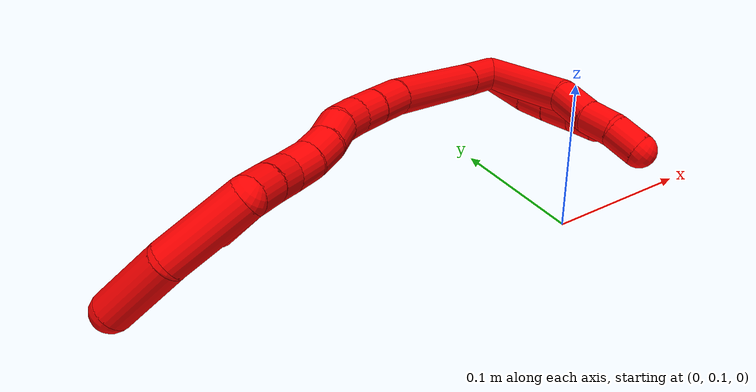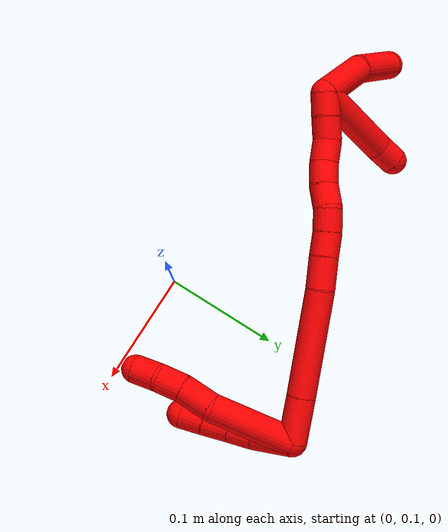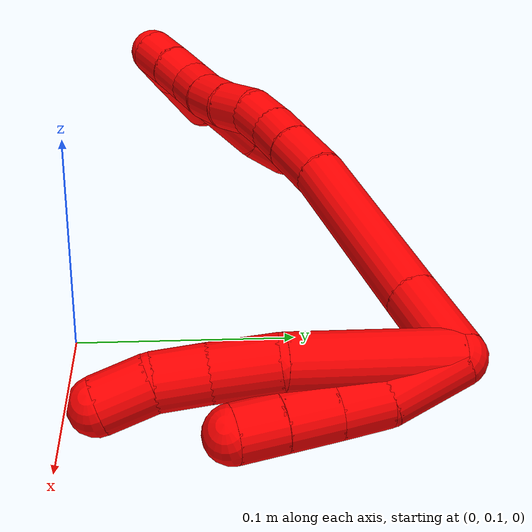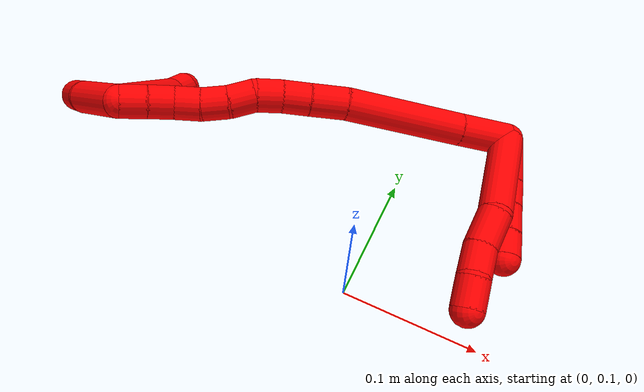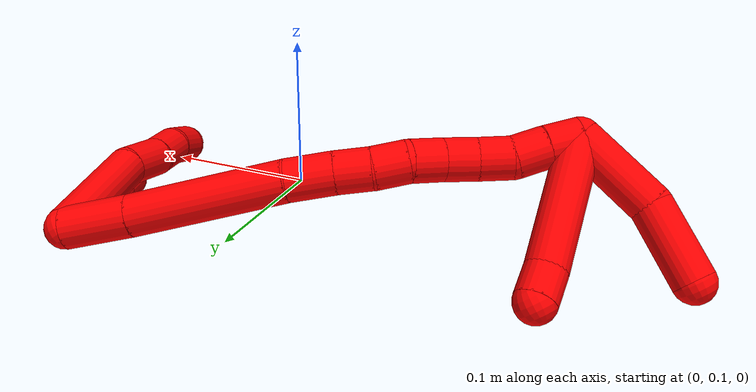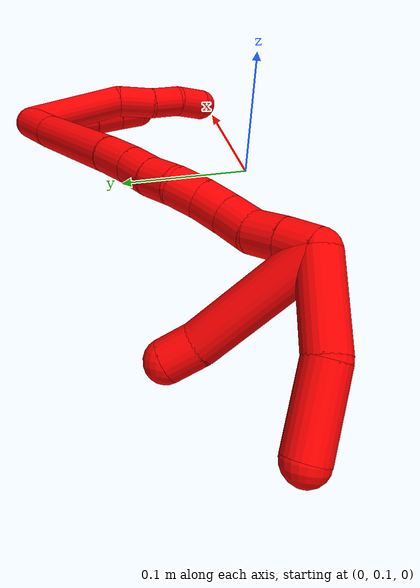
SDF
<sdf version="1.7">
 <world name="default">
  <model name="2">
   <static>0</static>
   <link name="2">
    <collision name="collision-cylinder-e_1_2_8">
     <pose>0.012177 -0.031545 0.015349 1.11795 0.334111 0.210183</pose>
     <geometry><cylinder><radius>0.0125</radius><length>0.074268</length></cylinder></geometry>
     <surface>
      <friction><ode><mu>1.16</mu><mu2>1.16</mu2><slip1>0</slip1><slip2>0</slip2></ode></friction>
      <contact><ode><kp>1e+06</kp><kd>1</kd><max_vel>0</max_vel><min_depth>0.001</min_depth></ode></contact>
     </surface>
    </collision>
    <visual name="visual-cylinder-e_1_2_8">
     <pose>0.012177 -0.031545 0.015349 1.11795 0.334111 0.210183</pose>
     <geometry><cylinder><radius>0.0125</radius><length>0.074268</length></cylinder></geometry>
     <material><ambient>1 0 0 1</ambient></material>
    </visual>
    <collision name="collision-cylinder-e_2_8_9">
     <pose>0.029449 -0.076719 0.032484 1.44045 0.354897 0.312161</pose>
     <geometry><cylinder><radius>0.0125</radius><length>0.02932</length></cylinder></geometry>
     <surface>
      <friction><ode><mu>1.16</mu><mu2>1.16</mu2><slip1>0</slip1><slip2>0</slip2></ode></friction>
      <contact><ode><kp>1e+06</kp><kd>1</kd><max_vel>0</max_vel><min_depth>0.001</min_depth></ode></contact>
     </surface>
    </collision>
    <visual name="visual-cylinder-e_2_8_9">
     <pose>0.029449 -0.076719 0.032484 1.44045 0.354897 0.312161</pose>
     <geometry><cylinder><radius>0.0125</radius><length>0.02932</length></cylinder></geometry>
     <material><ambient>1 0 0 1</ambient></material>
    </visual>
    <collision name="collision-cylinder-e_3_9_10">
     <pose>0.039412 -0.10044 0.037529 1.25844 0.430467 0.315628</pose>
     <geometry><cylinder><radius>0.0125</radius><length>0.023338</length></cylinder></geometry>
     <surface>
      <friction><ode><mu>1.16</mu><mu2>1.16</mu2><slip1>0</slip1><slip2>0</slip2></ode></friction>
      <contact><ode><kp>1e+06</kp><kd>1</kd><max_vel>0</max_vel><min_depth>0.001</min_depth></ode></contact>
     </surface>
    </collision>
    <visual name="visual-cylinder-e_3_9_10">
     <pose>0.039412 -0.10044 0.037529 1.25844 0.430467 0.315628</pose>
     <geometry><cylinder><radius>0.0125</radius><length>0.023338</length></cylinder></geometry>
     <material><ambient>1 0 0 1</ambient></material>
    </visual>
    <collision name="collision-cylinder-e_4_10_6">
     <pose>0.051069 -0.119791 0.041927 1.44838 0.628894 0.560224</pose>
     <geometry><cylinder><radius>0.0125</radius><length>0.023075</length></cylinder></geometry>
     <surface>
      <friction><ode><mu>1.16</mu><mu2>1.16</mu2><slip1>0</slip1><slip2>0</slip2></ode></friction>
      <contact><ode><kp>1e+06</kp><kd>1</kd><max_vel>0</max_vel><min_depth>0.001</min_depth></ode></contact>
     </surface>
    </collision>
    <visual name="visual-cylinder-e_4_10_6">
     <pose>0.051069 -0.119791 0.041927 1.44838 0.628894 0.560224</pose>
     <geometry><cylinder><radius>0.0125</radius><length>0.023075</length></cylinder></geometry>
     <material><ambient>1 0 0 1</ambient></material>
    </visual>
    <collision name="collision-cylinder-e_1_2_11">
     <pose>0.012128 -0.012374 0.003499 1.29521 0.756153 0.583725</pose>
     <geometry><cylinder><radius>0.0125</radius><length>0.035352</length></cylinder></geometry>
     <surface>
      <friction><ode><mu>1.16</mu><mu2>1.16</mu2><slip1>0</slip1><slip2>0</slip2></ode></friction>
      <contact><ode><kp>1e+06</kp><kd>1</kd><max_vel>0</max_vel><min_depth>0.001</min_depth></ode></contact>
     </surface>
    </collision>
    <visual name="visual-cylinder-e_1_2_11">
     <pose>0.012128 -0.012374 0.003499 1.29521 0.756153 0.583725</pose>
     <geometry><cylinder><radius>0.0125</radius><length>0.035352</length></cylinder></geometry>
     <material><ambient>1 0 0 1</ambient></material>
    </visual>
    <collision name="collision-cylinder-e_2_11_12">
     <pose>0.029661 -0.033377 0.010783 1.15745 0.520752 0.344682</pose>
     <geometry><cylinder><radius>0.0125</radius><length>0.021727</length></cylinder></geometry>
     <surface>
      <friction><ode><mu>1.16</mu><mu2>1.16</mu2><slip1>0</slip1><slip2>0</slip2></ode></friction>
      <contact><ode><kp>1e+06</kp><kd>1</kd><max_vel>0</max_vel><min_depth>0.001</min_depth></ode></contact>
     </surface>
    </collision>
    <visual name="visual-cylinder-e_2_11_12">
     <pose>0.029661 -0.033377 0.010783 1.15745 0.520752 0.344682</pose>
     <geometry><cylinder><radius>0.0125</radius><length>0.021727</length></cylinder></geometry>
     <material><ambient>1 0 0 1</ambient></material>
    </visual>
    <collision name="collision-cylinder-e_3_12_13">
     <pose>0.040658 -0.050922 0.018892 1.11924 0.513817 0.326216</pose>
     <geometry><cylinder><radius>0.0125</radius><length>0.022754</length></cylinder></geometry>
     <surface>
      <friction><ode><mu>1.16</mu><mu2>1.16</mu2><slip1>0</slip1><slip2>0</slip2></ode></friction>
      <contact><ode><kp>1e+06</kp><kd>1</kd><max_vel>0</max_vel><min_depth>0.001</min_depth></ode></contact>
     </surface>
    </collision>
    <visual name="visual-cylinder-e_3_12_13">
     <pose>0.040658 -0.050922 0.018892 1.11924 0.513817 0.326216</pose>
     <geometry><cylinder><radius>0.0125</radius><length>0.022754</length></cylinder></geometry>
     <material><ambient>1 0 0 1</ambient></material>
    </visual>
    <collision name="collision-cylinder-e_4_13_5">
     <pose>0.05116 -0.06786 0.026849 1.14558 0.508622 0.332185</pose>
     <geometry><cylinder><radius>0.0125</radius><length>0.020167</length></cylinder></geometry>
     <surface>
      <friction><ode><mu>1.16</mu><mu2>1.16</mu2><slip1>0</slip1><slip2>0</slip2></ode></friction>
      <contact><ode><kp>1e+06</kp><kd>1</kd><max_vel>0</max_vel><min_depth>0.001</min_depth></ode></contact>
     </surface>
    </collision>
    <visual name="visual-cylinder-e_4_13_5">
     <pose>0.05116 -0.06786 0.026849 1.14558 0.508622 0.332185</pose>
     <geometry><cylinder><radius>0.0125</radius><length>0.020167</length></cylinder></geometry>
     <material><ambient>1 0 0 1</ambient></material>
    </visual>
    <collision name="collision-cylinder-e_1_2_14">
     <pose>-0.013711 -0.013073 -0.00551 1.96972 -0.768361 -1.09421</pose>
     <geometry><cylinder><radius>0.0125</radius><length>0.039459</length></cylinder></geometry>
     <surface>
      <friction><ode><mu>1.16</mu><mu2>1.16</mu2><slip1>0</slip1><slip2>0</slip2></ode></friction>
      <contact><ode><kp>1e+06</kp><kd>1</kd><max_vel>0</max_vel><min_depth>0.001</min_depth></ode></contact>
     </surface>
    </collision>
    <visual name="visual-cylinder-e_1_2_14">
     <pose>-0.013711 -0.013073 -0.00551 1.96972 -0.768361 -1.09421</pose>
     <geometry><cylinder><radius>0.0125</radius><length>0.039459</length></cylinder></geometry>
     <material><ambient>1 0 0 1</ambient></material>
    </visual>
    <collision name="collision-cylinder-e_2_14_15">
     <pose>-0.059688 -0.056703 -0.022318 1.9249 -0.780559 -1.06706</pose>
     <geometry><cylinder><radius>0.0125</radius><length>0.091704</length></cylinder></geometry>
     <surface>
      <friction><ode><mu>1.16</mu><mu2>1.16</mu2><slip1>0</slip1><slip2>0</slip2></ode></friction>
      <contact><ode><kp>1e+06</kp><kd>1</kd><max_vel>0</max_vel><min_depth>0.001</min_depth></ode></contact>
     </surface>
    </collision>
    <visual name="visual-cylinder-e_2_14_15">
     <pose>-0.059688 -0.056703 -0.022318 1.9249 -0.780559 -1.06706</pose>
     <geometry><cylinder><radius>0.0125</radius><length>0.091704</length></cylinder></geometry>
     <material><ambient>1 0 0 1</ambient></material>
    </visual>
    <collision name="collision-cylinder-e_3_15_16">
     <pose>-0.100535 -0.097308 -0.037678 1.95512 -0.669782 -0.952926</pose>
     <geometry><cylinder><radius>0.0125</radius><length>0.027651</length></cylinder></geometry>
     <surface>
      <friction><ode><mu>1.16</mu><mu2>1.16</mu2><slip1>0</slip1><slip2>0</slip2></ode></friction>
      <contact><ode><kp>1e+06</kp><kd>1</kd><max_vel>0</max_vel><min_depth>0.001</min_depth></ode></contact>
     </surface>
    </collision>
    <visual name="visual-cylinder-e_3_15_16">
     <pose>-0.100535 -0.097308 -0.037678 1.95512 -0.669782 -0.952926</pose>
     <geometry><cylinder><radius>0.0125</radius><length>0.027651</length></cylinder></geometry>
     <material><ambient>1 0 0 1</ambient></material>
    </visual>
    <collision name="collision-cylinder-e_4_16_17">
     <pose>-0.11561 -0.114692 -0.045301 2.02261 -0.672386 -1.01797</pose>
     <geometry><cylinder><radius>0.0125</radius><length>0.020844</length></cylinder></geometry>
     <surface>
      <friction><ode><mu>1.16</mu><mu2>1.16</mu2><slip1>0</slip1><slip2>0</slip2></ode></friction>
      <contact><ode><kp>1e+06</kp><kd>1</kd><max_vel>0</max_vel><min_depth>0.001</min_depth></ode></contact>
     </surface>
    </collision>
    <visual name="visual-cylinder-e_4_16_17">
     <pose>-0.11561 -0.114692 -0.045301 2.02261 -0.672386 -1.01797</pose>
     <geometry><cylinder><radius>0.0125</radius><length>0.020844</length></cylinder></geometry>
     <material><ambient>1 0 0 1</ambient></material>
    </visual>
    <collision name="collision-cylinder-e_5_17_18">
     <pose>-0.127845 -0.129955 -0.051331 1.87287 -0.605163 -0.802462</pose>
     <geometry><cylinder><radius>0.0125</radius><length>0.020193</length></cylinder></geometry>
     <surface>
      <friction><ode><mu>1.16</mu><mu2>1.16</mu2><slip1>0</slip1><slip2>0</slip2></ode></friction>
      <contact><ode><kp>1e+06</kp><kd>1</kd><max_vel>0</max_vel><min_depth>0.001</min_depth></ode></contact>
     </surface>
    </collision>
    <visual name="visual-cylinder-e_5_17_18">
     <pose>-0.127845 -0.129955 -0.051331 1.87287 -0.605163 -0.802462</pose>
     <geometry><cylinder><radius>0.0125</radius><length>0.020193</length></cylinder></geometry>
     <material><ambient>1 0 0 1</ambient></material>
    </visual>
    <collision name="collision-cylinder-e_6_18_19">
     <pose>-0.136659 -0.146798 -0.057224 1.93733 -0.311022 -0.448554</pose>
     <geometry><cylinder><radius>0.0125</radius><length>0.020062</length></cylinder></geometry>
     <surface>
      <friction><ode><mu>1.16</mu><mu2>1.16</mu2><slip1>0</slip1><slip2>0</slip2></ode></friction>
      <contact><ode><kp>1e+06</kp><kd>1</kd><max_vel>0</max_vel><min_depth>0.001</min_depth></ode></contact>
     </surface>
    </collision>
    <visual name="visual-cylinder-e_6_18_19">
     <pose>-0.136659 -0.146798 -0.057224 1.93733 -0.311022 -0.448554</pose>
     <geometry><cylinder><radius>0.0125</radius><length>0.020062</length></cylinder></geometry>
     <material><ambient>1 0 0 1</ambient></material>
    </visual>
    <collision name="collision-cylinder-e_7_19_20">
     <pose>-0.144216 -0.163701 -0.064695 2.0399 -0.464505 -0.73509</pose>
     <geometry><cylinder><radius>0.0125</radius><length>0.020035</length></cylinder></geometry>
     <surface>
      <friction><ode><mu>1.16</mu><mu2>1.16</mu2><slip1>0</slip1><slip2>0</slip2></ode></friction>
      <contact><ode><kp>1e+06</kp><kd>1</kd><max_vel>0</max_vel><min_depth>0.001</min_depth></ode></contact>
     </surface>
    </collision>
    <visual name="visual-cylinder-e_7_19_20">
     <pose>-0.144216 -0.163701 -0.064695 2.0399 -0.464505 -0.73509</pose>
     <geometry><cylinder><radius>0.0125</radius><length>0.020035</length></cylinder></geometry>
     <material><ambient>1 0 0 1</ambient></material>
    </visual>
    <collision name="collision-cylinder-e_8_20_21">
     <pose>-0.154464 -0.178817 -0.072802 2.08834 -0.612318 -0.995973</pose>
     <geometry><cylinder><radius>0.0125</radius><length>0.020044</length></cylinder></geometry>
     <surface>
      <friction><ode><mu>1.16</mu><mu2>1.16</mu2><slip1>0</slip1><slip2>0</slip2></ode></friction>
      <contact><ode><kp>1e+06</kp><kd>1</kd><max_vel>0</max_vel><min_depth>0.001</min_depth></ode></contact>
     </surface>
    </collision>
    <visual name="visual-cylinder-e_8_20_21">
     <pose>-0.154464 -0.178817 -0.072802 2.08834 -0.612318 -0.995973</pose>
     <geometry><cylinder><radius>0.0125</radius><length>0.020044</length></cylinder></geometry>
     <material><ambient>1 0 0 1</ambient></material>
    </visual>
    <collision name="collision-cylinder-e_9_21_22">
     <pose>-0.165873 -0.194089 -0.078211 1.73521 -0.600004 -0.699756</pose>
     <geometry><cylinder><radius>0.0125</radius><length>0.020007</length></cylinder></geometry>
     <surface>
      <friction><ode><mu>1.16</mu><mu2>1.16</mu2><slip1>0</slip1><slip2>0</slip2></ode></friction>
      <contact><ode><kp>1e+06</kp><kd>1</kd><max_vel>0</max_vel><min_depth>0.001</min_depth></ode></contact>
     </surface>
    </collision>
    <visual name="visual-cylinder-e_9_21_22">
     <pose>-0.165873 -0.194089 -0.078211 1.73521 -0.600004 -0.699756</pose>
     <geometry><cylinder><radius>0.0125</radius><length>0.020007</length></cylinder></geometry>
     <material><ambient>1 0 0 1</ambient></material>
    </visual>
    <collision name="collision-cylinder-e_10_22_1">
     <pose>-0.177029 -0.210344 -0.081538 1.8098 -0.58328 -0.730012</pose>
     <geometry><cylinder><radius>0.0125</radius><length>0.020001</length></cylinder></geometry>
     <surface>
      <friction><ode><mu>1.16</mu><mu2>1.16</mu2><slip1>0</slip1><slip2>0</slip2></ode></friction>
      <contact><ode><kp>1e+06</kp><kd>1</kd><max_vel>0</max_vel><min_depth>0.001</min_depth></ode></contact>
     </surface>
    </collision>
    <visual name="visual-cylinder-e_10_22_1">
     <pose>-0.177029 -0.210344 -0.081538 1.8098 -0.58328 -0.730012</pose>
     <geometry><cylinder><radius>0.0125</radius><length>0.020001</length></cylinder></geometry>
     <material><ambient>1 0 0 1</ambient></material>
    </visual>
    <collision name="collision-cylinder-e_1_1_23">
     <pose>-0.173115 -0.191561 -0.111483 -2.37582 0.238217 -0.577654</pose>
     <geometry><cylinder><radius>0.0125</radius><length>0.079856</length></cylinder></geometry>
     <surface>
      <friction><ode><mu>1.16</mu><mu2>1.16</mu2><slip1>0</slip1><slip2>0</slip2></ode></friction>
      <contact><ode><kp>1e+06</kp><kd>1</kd><max_vel>0</max_vel><min_depth>0.001</min_depth></ode></contact>
     </surface>
    </collision>
    <visual name="visual-cylinder-e_1_1_23">
     <pose>-0.173115 -0.191561 -0.111483 -2.37582 0.238217 -0.577654</pose>
     <geometry><cylinder><radius>0.0125</radius><length>0.079856</length></cylinder></geometry>
     <material><ambient>1 0 0 1</ambient></material>
    </visual>
    <collision name="collision-cylinder-e_2_23_4">
     <pose>-0.162464 -0.156624 -0.145387 -2.20637 0.122376 -0.24147</pose>
     <geometry><cylinder><radius>0.0125</radius><length>0.020144</length></cylinder></geometry>
     <surface>
      <friction><ode><mu>1.16</mu><mu2>1.16</mu2><slip1>0</slip1><slip2>0</slip2></ode></friction>
      <contact><ode><kp>1e+06</kp><kd>1</kd><max_vel>0</max_vel><min_depth>0.001</min_depth></ode></contact>
     </surface>
    </collision>
    <visual name="visual-cylinder-e_2_23_4">
     <pose>-0.162464 -0.156624 -0.145387 -2.20637 0.122376 -0.24147</pose>
     <geometry><cylinder><radius>0.0125</radius><length>0.020144</length></cylinder></geometry>
     <material><ambient>1 0 0 1</ambient></material>
    </visual>
    <collision name="collision-cylinder-e_1_1_24">
     <pose>-0.190211 -0.222419 -0.108579 2.98468 -0.293651 -2.1644</pose>
     <geometry><cylinder><radius>0.0125</radius><length>0.053024</length></cylinder></geometry>
     <surface>
      <friction><ode><mu>1.16</mu><mu2>1.16</mu2><slip1>0</slip1><slip2>0</slip2></ode></friction>
      <contact><ode><kp>1e+06</kp><kd>1</kd><max_vel>0</max_vel><min_depth>0.001</min_depth></ode></contact>
     </surface>
    </collision>
    <visual name="visual-cylinder-e_1_1_24">
     <pose>-0.190211 -0.222419 -0.108579 2.98468 -0.293651 -2.1644</pose>
     <geometry><cylinder><radius>0.0125</radius><length>0.053024</length></cylinder></geometry>
     <material><ambient>1 0 0 1</ambient></material>
    </visual>
    <collision name="collision-cylinder-e_2_24_3">
     <pose>-0.20037 -0.223896 -0.156868 -3.03484 -0.106016 1.5639</pose>
     <geometry><cylinder><radius>0.0125</radius><length>0.046976</length></cylinder></geometry>
     <surface>
      <friction><ode><mu>1.16</mu><mu2>1.16</mu2><slip1>0</slip1><slip2>0</slip2></ode></friction>
      <contact><ode><kp>1e+06</kp><kd>1</kd><max_vel>0</max_vel><min_depth>0.001</min_depth></ode></contact>
     </surface>
    </collision>
    <visual name="visual-cylinder-e_2_24_3">
     <pose>-0.20037 -0.223896 -0.156868 -3.03484 -0.106016 1.5639</pose>
     <geometry><cylinder><radius>0.0125</radius><length>0.046976</length></cylinder></geometry>
     <material><ambient>1 0 0 1</ambient></material>
    </visual>
    <collision name="collision-sphere-3">
     <pose>-0.202856 -0.221408 -0.180091 0 -0 0</pose>
     <geometry><sphere><radius>0.0125</radius></sphere></geometry>
     <surface>
      <friction><ode><mu>1.16</mu><mu2>1.16</mu2><slip1>0</slip1><slip2>0</slip2></ode></friction>
      <contact><ode><kp>1e+06</kp><kd>1</kd><max_vel>0</max_vel><min_depth>0.001</min_depth></ode></contact>
     </surface>
    </collision>
    <visual name="visual-sphere-3">
     <pose>-0.202856 -0.221408 -0.180091 0 -0 0</pose>
     <geometry><sphere><radius>0.0125</radius></sphere></geometry>
     <material><ambient>1 0 0 1</ambient></material>
    </visual>
    <collision name="collision-sphere-24">
     <pose>-0.197885 -0.226385 -0.133644 0 -0 0</pose>
     <geometry><sphere><radius>0.0125</radius></sphere></geometry>
     <surface>
      <friction><ode><mu>1.16</mu><mu2>1.16</mu2><slip1>0</slip1><slip2>0</slip2></ode></friction>
      <contact><ode><kp>1e+06</kp><kd>1</kd><max_vel>0</max_vel><min_depth>0.001</min_depth></ode></contact>
     </surface>
    </collision>
    <visual name="visual-sphere-24">
     <pose>-0.197885 -0.226385 -0.133644 0 -0 0</pose>
     <geometry><sphere><radius>0.0125</radius></sphere></geometry>
     <material><ambient>1 0 0 1</ambient></material>
    </visual>
    <collision name="collision-sphere-4">
     <pose>-0.161235 -0.14858 -0.151321 0 -0 0</pose>
     <geometry><sphere><radius>0.0125</radius></sphere></geometry>
     <surface>
      <friction><ode><mu>1.16</mu><mu2>1.16</mu2><slip1>0</slip1><slip2>0</slip2></ode></friction>
      <contact><ode><kp>1e+06</kp><kd>1</kd><max_vel>0</max_vel><min_depth>0.001</min_depth></ode></contact>
     </surface>
    </collision>
    <visual name="visual-sphere-4">
     <pose>-0.161235 -0.14858 -0.151321 0 -0 0</pose>
     <geometry><sphere><radius>0.0125</radius></sphere></geometry>
     <material><ambient>1 0 0 1</ambient></material>
    </visual>
    <collision name="collision-sphere-23">
     <pose>-0.163694 -0.164669 -0.139452 0 -0 0</pose>
     <geometry><sphere><radius>0.0125</radius></sphere></geometry>
     <surface>
      <friction><ode><mu>1.16</mu><mu2>1.16</mu2><slip1>0</slip1><slip2>0</slip2></ode></friction>
      <contact><ode><kp>1e+06</kp><kd>1</kd><max_vel>0</max_vel><min_depth>0.001</min_depth></ode></contact>
     </surface>
    </collision>
    <visual name="visual-sphere-23">
     <pose>-0.163694 -0.164669 -0.139452 0 -0 0</pose>
     <geometry><sphere><radius>0.0125</radius></sphere></geometry>
     <material><ambient>1 0 0 1</ambient></material>
    </visual>
    <collision name="collision-sphere-1">
     <pose>-0.182537 -0.218453 -0.083514 0 -0 0</pose>
     <geometry><sphere><radius>0.0125</radius></sphere></geometry>
     <surface>
      <friction><ode><mu>1.16</mu><mu2>1.16</mu2><slip1>0</slip1><slip2>0</slip2></ode></friction>
      <contact><ode><kp>1e+06</kp><kd>1</kd><max_vel>0</max_vel><min_depth>0.001</min_depth></ode></contact>
     </surface>
    </collision>
    <visual name="visual-sphere-1">
     <pose>-0.182537 -0.218453 -0.083514 0 -0 0</pose>
     <geometry><sphere><radius>0.0125</radius></sphere></geometry>
     <material><ambient>1 0 0 1</ambient></material>
    </visual>
    <collision name="collision-sphere-22">
     <pose>-0.171521 -0.202234 -0.079562 0 -0 0</pose>
     <geometry><sphere><radius>0.0125</radius></sphere></geometry>
     <surface>
      <friction><ode><mu>1.16</mu><mu2>1.16</mu2><slip1>0</slip1><slip2>0</slip2></ode></friction>
      <contact><ode><kp>1e+06</kp><kd>1</kd><max_vel>0</max_vel><min_depth>0.001</min_depth></ode></contact>
     </surface>
    </collision>
    <visual name="visual-sphere-22">
     <pose>-0.171521 -0.202234 -0.079562 0 -0 0</pose>
     <geometry><sphere><radius>0.0125</radius></sphere></geometry>
     <material><ambient>1 0 0 1</ambient></material>
    </visual>
    <collision name="collision-sphere-21">
     <pose>-0.160225 -0.185944 -0.076859 0 -0 0</pose>
     <geometry><sphere><radius>0.0125</radius></sphere></geometry>
     <surface>
      <friction><ode><mu>1.16</mu><mu2>1.16</mu2><slip1>0</slip1><slip2>0</slip2></ode></friction>
      <contact><ode><kp>1e+06</kp><kd>1</kd><max_vel>0</max_vel><min_depth>0.001</min_depth></ode></contact>
     </surface>
    </collision>
    <visual name="visual-sphere-21">
     <pose>-0.160225 -0.185944 -0.076859 0 -0 0</pose>
     <geometry><sphere><radius>0.0125</radius></sphere></geometry>
     <material><ambient>1 0 0 1</ambient></material>
    </visual>
    <collision name="collision-sphere-11">
     <pose>0.024256 -0.024747 0.006998 0 -0 0</pose>
     <geometry><sphere><radius>0.0125</radius></sphere></geometry>
     <surface>
      <friction><ode><mu>1.16</mu><mu2>1.16</mu2><slip1>0</slip1><slip2>0</slip2></ode></friction>
      <contact><ode><kp>1e+06</kp><kd>1</kd><max_vel>0</max_vel><min_depth>0.001</min_depth></ode></contact>
     </surface>
    </collision>
    <visual name="visual-sphere-11">
     <pose>0.024256 -0.024747 0.006998 0 -0 0</pose>
     <geometry><sphere><radius>0.0125</radius></sphere></geometry>
     <material><ambient>1 0 0 1</ambient></material>
    </visual>
    <collision name="collision-sphere-6">
     <pose>0.057855 -0.129051 0.043067 0 -0 0</pose>
     <geometry><sphere><radius>0.0125</radius></sphere></geometry>
     <surface>
      <friction><ode><mu>1.16</mu><mu2>1.16</mu2><slip1>0</slip1><slip2>0</slip2></ode></friction>
      <contact><ode><kp>1e+06</kp><kd>1</kd><max_vel>0</max_vel><min_depth>0.001</min_depth></ode></contact>
     </surface>
    </collision>
    <visual name="visual-sphere-6">
     <pose>0.057855 -0.129051 0.043067 0 -0 0</pose>
     <geometry><sphere><radius>0.0125</radius></sphere></geometry>
     <material><ambient>1 0 0 1</ambient></material>
    </visual>
    <collision name="collision-sphere-10">
     <pose>0.044282 -0.110531 0.040788 0 -0 0</pose>
     <geometry><sphere><radius>0.0125</radius></sphere></geometry>
     <surface>
      <friction><ode><mu>1.16</mu><mu2>1.16</mu2><slip1>0</slip1><slip2>0</slip2></ode></friction>
      <contact><ode><kp>1e+06</kp><kd>1</kd><max_vel>0</max_vel><min_depth>0.001</min_depth></ode></contact>
     </surface>
    </collision>
    <visual name="visual-sphere-10">
     <pose>0.044282 -0.110531 0.040788 0 -0 0</pose>
     <geometry><sphere><radius>0.0125</radius></sphere></geometry>
     <material><ambient>1 0 0 1</ambient></material>
    </visual>
    <collision name="collision-sphere-9">
     <pose>0.034543 -0.090349 0.034271 0 -0 0</pose>
     <geometry><sphere><radius>0.0125</radius></sphere></geometry>
     <surface>
      <friction><ode><mu>1.16</mu><mu2>1.16</mu2><slip1>0</slip1><slip2>0</slip2></ode></friction>
      <contact><ode><kp>1e+06</kp><kd>1</kd><max_vel>0</max_vel><min_depth>0.001</min_depth></ode></contact>
     </surface>
    </collision>
    <visual name="visual-sphere-9">
     <pose>0.034543 -0.090349 0.034271 0 -0 0</pose>
     <geometry><sphere><radius>0.0125</radius></sphere></geometry>
     <material><ambient>1 0 0 1</ambient></material>
    </visual>
    <collision name="collision-sphere-2">
     <geometry><sphere><radius>0.0125</radius></sphere></geometry>
     <surface>
      <friction><ode><mu>1.16</mu><mu2>1.16</mu2><slip1>0</slip1><slip2>0</slip2></ode></friction>
      <contact><ode><kp>1e+06</kp><kd>1</kd><max_vel>0</max_vel><min_depth>0.001</min_depth></ode></contact>
     </surface>
    </collision>
    <visual name="visual-sphere-2">
     <geometry><sphere><radius>0.0125</radius></sphere></geometry>
     <material><ambient>1 0 0 1</ambient></material>
    </visual>
    <collision name="collision-sphere-19">
     <pose>-0.139729 -0.155713 -0.060646 0 -0 0</pose>
     <geometry><sphere><radius>0.0125</radius></sphere></geometry>
     <surface>
      <friction><ode><mu>1.16</mu><mu2>1.16</mu2><slip1>0</slip1><slip2>0</slip2></ode></friction>
      <contact><ode><kp>1e+06</kp><kd>1</kd><max_vel>0</max_vel><min_depth>0.001</min_depth></ode></contact>
     </surface>
    </collision>
    <visual name="visual-sphere-19">
     <pose>-0.139729 -0.155713 -0.060646 0 -0 0</pose>
     <geometry><sphere><radius>0.0125</radius></sphere></geometry>
     <material><ambient>1 0 0 1</ambient></material>
    </visual>
    <collision name="collision-sphere-8">
     <pose>0.024355 -0.063089 0.030697 0 -0 0</pose>
     <geometry><sphere><radius>0.0125</radius></sphere></geometry>
     <surface>
      <friction><ode><mu>1.16</mu><mu2>1.16</mu2><slip1>0</slip1><slip2>0</slip2></ode></friction>
      <contact><ode><kp>1e+06</kp><kd>1</kd><max_vel>0</max_vel><min_depth>0.001</min_depth></ode></contact>
     </surface>
    </collision>
    <visual name="visual-sphere-8">
     <pose>0.024355 -0.063089 0.030697 0 -0 0</pose>
     <geometry><sphere><radius>0.0125</radius></sphere></geometry>
     <material><ambient>1 0 0 1</ambient></material>
    </visual>
    <collision name="collision-sphere-12">
     <pose>0.035066 -0.042007 0.014568 0 -0 0</pose>
     <geometry><sphere><radius>0.0125</radius></sphere></geometry>
     <surface>
      <friction><ode><mu>1.16</mu><mu2>1.16</mu2><slip1>0</slip1><slip2>0</slip2></ode></friction>
      <contact><ode><kp>1e+06</kp><kd>1</kd><max_vel>0</max_vel><min_depth>0.001</min_depth></ode></contact>
     </surface>
    </collision>
    <visual name="visual-sphere-12">
     <pose>0.035066 -0.042007 0.014568 0 -0 0</pose>
     <geometry><sphere><radius>0.0125</radius></sphere></geometry>
     <material><ambient>1 0 0 1</ambient></material>
    </visual>
    <collision name="collision-sphere-13">
     <pose>0.046249 -0.059837 0.023215 0 -0 0</pose>
     <geometry><sphere><radius>0.0125</radius></sphere></geometry>
     <surface>
      <friction><ode><mu>1.16</mu><mu2>1.16</mu2><slip1>0</slip1><slip2>0</slip2></ode></friction>
      <contact><ode><kp>1e+06</kp><kd>1</kd><max_vel>0</max_vel><min_depth>0.001</min_depth></ode></contact>
     </surface>
    </collision>
    <visual name="visual-sphere-13">
     <pose>0.046249 -0.059837 0.023215 0 -0 0</pose>
     <geometry><sphere><radius>0.0125</radius></sphere></geometry>
     <material><ambient>1 0 0 1</ambient></material>
    </visual>
    <collision name="collision-sphere-5">
     <pose>0.05607 -0.075883 0.030482 0 -0 0</pose>
     <geometry><sphere><radius>0.0125</radius></sphere></geometry>
     <surface>
      <friction><ode><mu>1.16</mu><mu2>1.16</mu2><slip1>0</slip1><slip2>0</slip2></ode></friction>
      <contact><ode><kp>1e+06</kp><kd>1</kd><max_vel>0</max_vel><min_depth>0.001</min_depth></ode></contact>
     </surface>
    </collision>
    <visual name="visual-sphere-5">
     <pose>0.05607 -0.075883 0.030482 0 -0 0</pose>
     <geometry><sphere><radius>0.0125</radius></sphere></geometry>
     <material><ambient>1 0 0 1</ambient></material>
    </visual>
    <collision name="collision-sphere-14">
     <pose>-0.027423 -0.026145 -0.011021 0 -0 0</pose>
     <geometry><sphere><radius>0.0125</radius></sphere></geometry>
     <surface>
      <friction><ode><mu>1.16</mu><mu2>1.16</mu2><slip1>0</slip1><slip2>0</slip2></ode></friction>
      <contact><ode><kp>1e+06</kp><kd>1</kd><max_vel>0</max_vel><min_depth>0.001</min_depth></ode></contact>
     </surface>
    </collision>
    <visual name="visual-sphere-14">
     <pose>-0.027423 -0.026145 -0.011021 0 -0 0</pose>
     <geometry><sphere><radius>0.0125</radius></sphere></geometry>
     <material><ambient>1 0 0 1</ambient></material>
    </visual>
    <collision name="collision-sphere-15">
     <pose>-0.091952 -0.08726 -0.033614 0 -0 0</pose>
     <geometry><sphere><radius>0.0125</radius></sphere></geometry>
     <surface>
      <friction><ode><mu>1.16</mu><mu2>1.16</mu2><slip1>0</slip1><slip2>0</slip2></ode></friction>
      <contact><ode><kp>1e+06</kp><kd>1</kd><max_vel>0</max_vel><min_depth>0.001</min_depth></ode></contact>
     </surface>
    </collision>
    <visual name="visual-sphere-15">
     <pose>-0.091952 -0.08726 -0.033614 0 -0 0</pose>
     <geometry><sphere><radius>0.0125</radius></sphere></geometry>
     <material><ambient>1 0 0 1</ambient></material>
    </visual>
    <collision name="collision-sphere-16">
     <pose>-0.109118 -0.107356 -0.041741 0 -0 0</pose>
     <geometry><sphere><radius>0.0125</radius></sphere></geometry>
     <surface>
      <friction><ode><mu>1.16</mu><mu2>1.16</mu2><slip1>0</slip1><slip2>0</slip2></ode></friction>
      <contact><ode><kp>1e+06</kp><kd>1</kd><max_vel>0</max_vel><min_depth>0.001</min_depth></ode></contact>
     </surface>
    </collision>
    <visual name="visual-sphere-16">
     <pose>-0.109118 -0.107356 -0.041741 0 -0 0</pose>
     <geometry><sphere><radius>0.0125</radius></sphere></geometry>
     <material><ambient>1 0 0 1</ambient></material>
    </visual>
    <collision name="collision-sphere-17">
     <pose>-0.122101 -0.122027 -0.048861 0 -0 0</pose>
     <geometry><sphere><radius>0.0125</radius></sphere></geometry>
     <surface>
      <friction><ode><mu>1.16</mu><mu2>1.16</mu2><slip1>0</slip1><slip2>0</slip2></ode></friction>
      <contact><ode><kp>1e+06</kp><kd>1</kd><max_vel>0</max_vel><min_depth>0.001</min_depth></ode></contact>
     </surface>
    </collision>
    <visual name="visual-sphere-17">
     <pose>-0.122101 -0.122027 -0.048861 0 -0 0</pose>
     <geometry><sphere><radius>0.0125</radius></sphere></geometry>
     <material><ambient>1 0 0 1</ambient></material>
    </visual>
    <collision name="collision-sphere-18">
     <pose>-0.133589 -0.137882 -0.053802 0 -0 0</pose>
     <geometry><sphere><radius>0.0125</radius></sphere></geometry>
     <surface>
      <friction><ode><mu>1.16</mu><mu2>1.16</mu2><slip1>0</slip1><slip2>0</slip2></ode></friction>
      <contact><ode><kp>1e+06</kp><kd>1</kd><max_vel>0</max_vel><min_depth>0.001</min_depth></ode></contact>
     </surface>
    </collision>
    <visual name="visual-sphere-18">
     <pose>-0.133589 -0.137882 -0.053802 0 -0 0</pose>
     <geometry><sphere><radius>0.0125</radius></sphere></geometry>
     <material><ambient>1 0 0 1</ambient></material>
    </visual>
    <collision name="collision-sphere-20">
     <pose>-0.148704 -0.17169 -0.068744 0 -0 0</pose>
     <geometry><sphere><radius>0.0125</radius></sphere></geometry>
     <surface>
      <friction><ode><mu>1.16</mu><mu2>1.16</mu2><slip1>0</slip1><slip2>0</slip2></ode></friction>
      <contact><ode><kp>1e+06</kp><kd>1</kd><max_vel>0</max_vel><min_depth>0.001</min_depth></ode></contact>
     </surface>
    </collision>
    <visual name="visual-sphere-20">
     <pose>-0.148704 -0.17169 -0.068744 0 -0 0</pose>
     <geometry><sphere><radius>0.0125</radius></sphere></geometry>
     <material><ambient>1 0 0 1</ambient></material>
    </visual>
    <inertial>
     <pose>-0.078762 -0.113966 -0.042771 0 -0 0</pose>
     <mass>0.75</mass>
     <inertia><ixx>3.9e-05</ixx><ixy>0</ixy><ixz>0</ixz><iyy>-5.2e-05</iyy><iyz>0</iyz><izz>9.3e-05</izz></inertia>
    </inertial>
   </link>
   <pose>0.064397 0.263375 0.026464 0.021927 0.697439 -0.36535</pose>
  </model>
 </world>
</sdf>
